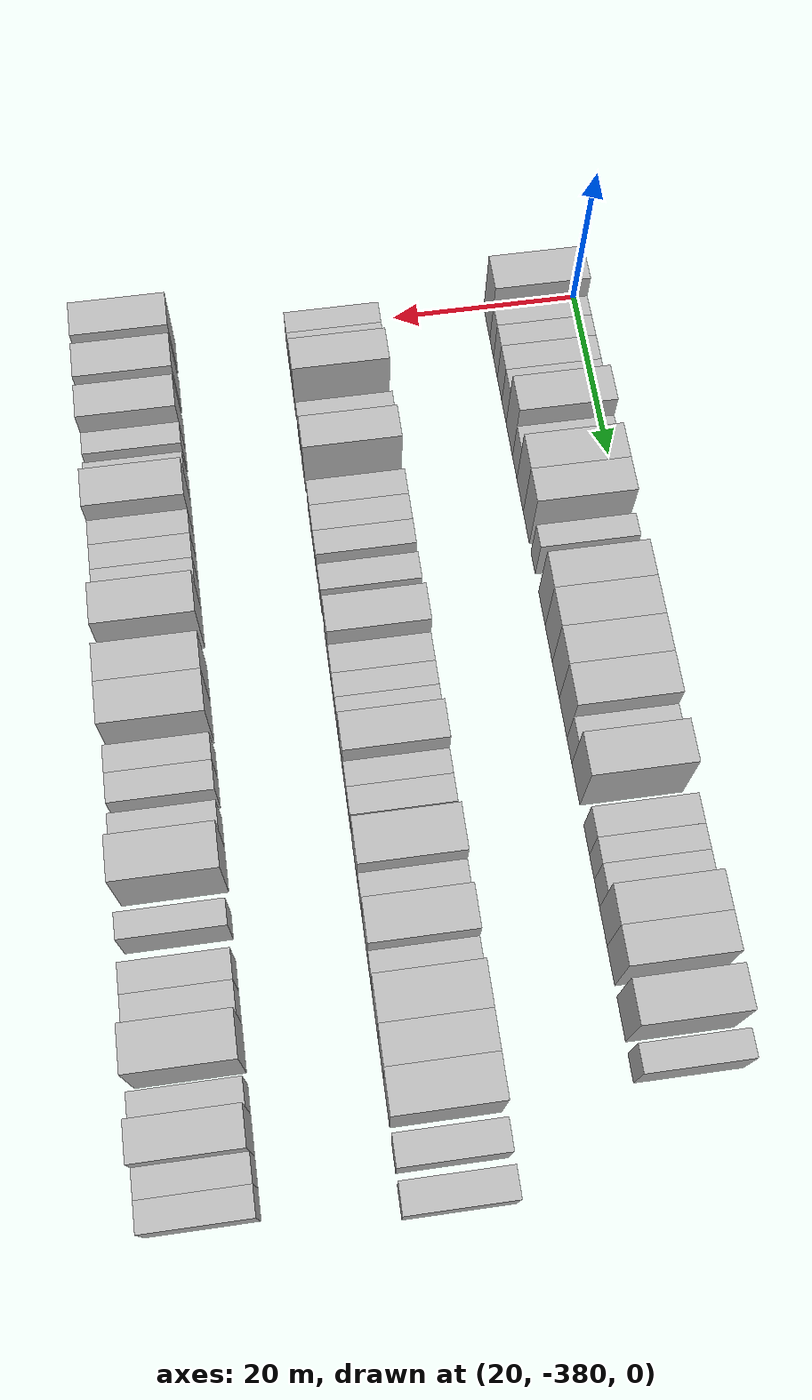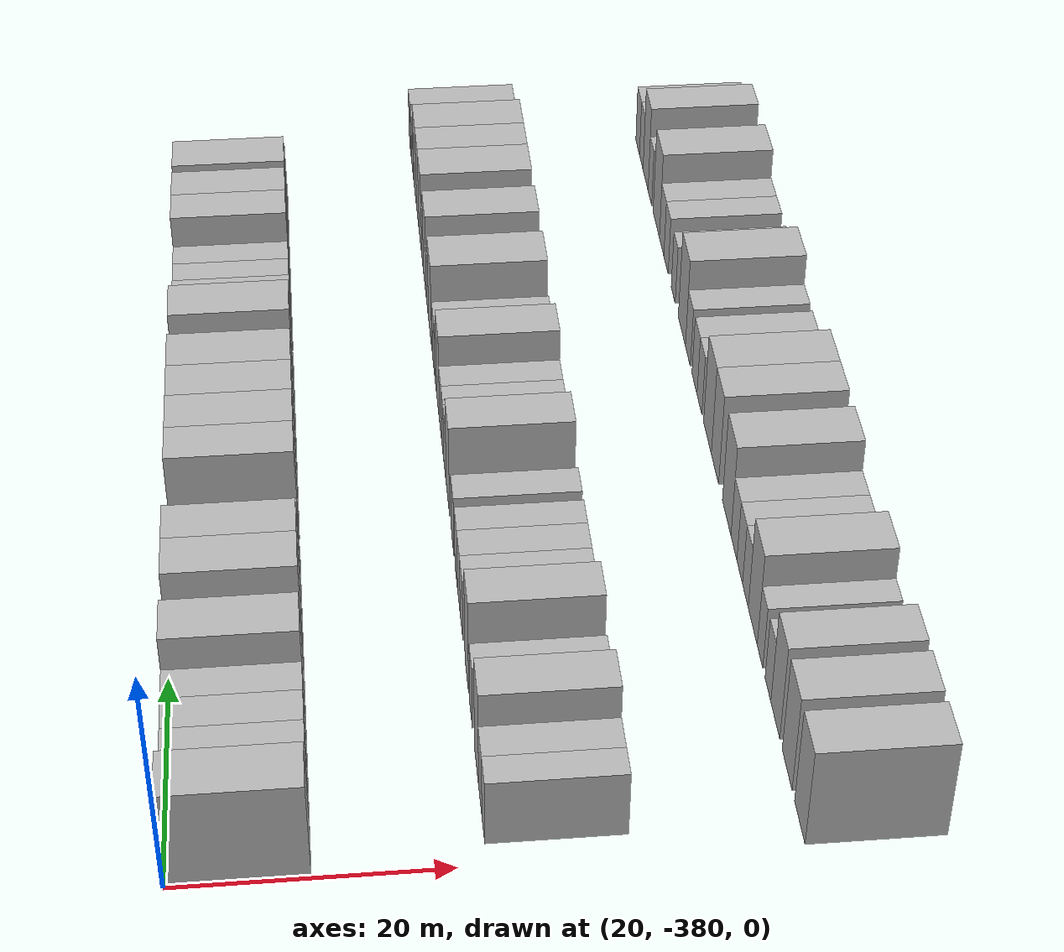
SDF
<sdf version="1.6">
 <world name="default">
  <model name="building_1">
   <static>1</static>
   <pose>25.0000 -377.9261 0 0.000000 0.000000 0.000000</pose>
   <link name="link">
    <pose>0 0 4.50 0 0 0</pose>
    <collision name="collision"><geometry><box><size>10.0000 4.1477 9.0000</size></box></geometry></collision>
    <visual name="visual">
     <cast_shadows>0</cast_shadows>
     <geometry><box><size>10.0000 4.1477 9.0000</size></box></geometry>
     <material>
      <script>
       <uri>model://HANNAS_wall/materials/scripts</uri>
       <uri>model://HANNAS_wall/materials/textures</uri>
       <name>vrc/HANNAS_wall</name>
      </script>
     </material>
    </visual>
   </link>
  </model>
  <model name="building_2">
   <static>1</static>
   <pose>25.0000 -374.6442 0 0.000000 0.000000 0.000000</pose>
   <link name="link">
    <pose>0 0 3.00 0 0 0</pose>
    <collision name="collision"><geometry><box><size>10.0000 2.4162 6.0000</size></box></geometry></collision>
    <visual name="visual">
     <cast_shadows>0</cast_shadows>
     <geometry><box><size>10.0000 2.4162 6.0000</size></box></geometry>
     <material>
      <script>
       <uri>model://HANNAS_wall/materials/scripts</uri>
       <uri>model://HANNAS_wall/materials/textures</uri>
       <name>vrc/HANNAS_wall</name>
      </script>
     </material>
    </visual>
   </link>
  </model>
  <model name="building_3">
   <static>1</static>
   <pose>25.0000 -372.1507 0 0.000000 0.000000 0.000000</pose>
   <link name="link">
    <pose>0 0 3.00 0 0 0</pose>
    <collision name="collision"><geometry><box><size>10.0000 2.5707 6.0000</size></box></geometry></collision>
    <visual name="visual">
     <cast_shadows>0</cast_shadows>
     <geometry><box><size>10.0000 2.5707 6.0000</size></box></geometry>
     <material>
      <script>
       <uri>model://HANNAS_wall/materials/scripts</uri>
       <uri>model://HANNAS_wall/materials/textures</uri>
       <name>vrc/HANNAS_wall</name>
      </script>
     </material>
    </visual>
   </link>
  </model>
  <model name="building_4">
   <static>1</static>
   <pose>25.0000 -369.3969 0 0.000000 0.000000 0.000000</pose>
   <link name="link">
    <pose>0 0 3.00 0 0 0</pose>
    <collision name="collision"><geometry><box><size>10.0000 2.9368 6.0000</size></box></geometry></collision>
    <visual name="visual">
     <cast_shadows>0</cast_shadows>
     <geometry><box><size>10.0000 2.9368 6.0000</size></box></geometry>
     <material>
      <script>
       <uri>model://HANNAS_wall/materials/scripts</uri>
       <uri>model://HANNAS_wall/materials/textures</uri>
       <name>vrc/HANNAS_wall</name>
      </script>
     </material>
    </visual>
   </link>
  </model>
  <model name="building_5">
   <static>1</static>
   <pose>25.0000 -366.5277 0 0.000000 0.000000 0.000000</pose>
   <link name="link">
    <pose>0 0 3.00 0 0 0</pose>
    <collision name="collision"><geometry><box><size>10.0000 2.8017 6.0000</size></box></geometry></collision>
    <visual name="visual">
     <cast_shadows>0</cast_shadows>
     <geometry><box><size>10.0000 2.8017 6.0000</size></box></geometry>
     <material>
      <script>
       <uri>model://HANNAS_wall/materials/scripts</uri>
       <uri>model://HANNAS_wall/materials/textures</uri>
       <name>vrc/HANNAS_wall</name>
      </script>
     </material>
    </visual>
   </link>
  </model>
  <model name="building_6">
   <static>1</static>
   <pose>25.0000 -363.0962 0 0.000000 0.000000 0.000000</pose>
   <link name="link">
    <pose>0 0 4.50 0 0 0</pose>
    <collision name="collision"><geometry><box><size>10.0000 4.0613 9.0000</size></box></geometry></collision>
    <visual name="visual">
     <cast_shadows>0</cast_shadows>
     <geometry><box><size>10.0000 4.0613 9.0000</size></box></geometry>
     <material>
      <script>
       <uri>model://HANNAS_wall/materials/scripts</uri>
       <uri>model://HANNAS_wall/materials/textures</uri>
       <name>vrc/HANNAS_wall</name>
      </script>
     </material>
    </visual>
   </link>
  </model>
  <model name="building_7">
   <static>1</static>
   <pose>25.0000 -359.6851 0 0.000000 0.000000 0.000000</pose>
   <link name="link">
    <pose>0 0 3.00 0 0 0</pose>
    <collision name="collision"><geometry><box><size>10.0000 2.7610 6.0000</size></box></geometry></collision>
    <visual name="visual">
     <cast_shadows>0</cast_shadows>
     <geometry><box><size>10.0000 2.7610 6.0000</size></box></geometry>
     <material>
      <script>
       <uri>model://HANNAS_wall/materials/scripts</uri>
       <uri>model://HANNAS_wall/materials/textures</uri>
       <name>vrc/HANNAS_wall</name>
      </script>
     </material>
    </visual>
   </link>
  </model>
  <model name="building_8">
   <static>1</static>
   <pose>25.0000 -356.3516 0 0.000000 0.000000 0.000000</pose>
   <link name="link">
    <pose>0 0 4.50 0 0 0</pose>
    <collision name="collision"><geometry><box><size>10.0000 3.9060 9.0000</size></box></geometry></collision>
    <visual name="visual">
     <cast_shadows>0</cast_shadows>
     <geometry><box><size>10.0000 3.9060 9.0000</size></box></geometry>
     <material>
      <script>
       <uri>model://HANNAS_wall/materials/scripts</uri>
       <uri>model://HANNAS_wall/materials/textures</uri>
       <name>vrc/HANNAS_wall</name>
      </script>
     </material>
    </visual>
   </link>
  </model>
  <model name="building_9">
   <static>1</static>
   <pose>25.0000 -352.5544 0 0.000000 0.000000 0.000000</pose>
   <link name="link">
    <pose>0 0 4.50 0 0 0</pose>
    <collision name="collision"><geometry><box><size>10.0000 3.6885 9.0000</size></box></geometry></collision>
    <visual name="visual">
     <cast_shadows>0</cast_shadows>
     <geometry><box><size>10.0000 3.6885 9.0000</size></box></geometry>
     <material>
      <script>
       <uri>model://HANNAS_wall/materials/scripts</uri>
       <uri>model://HANNAS_wall/materials/textures</uri>
       <name>vrc/HANNAS_wall</name>
      </script>
     </material>
    </visual>
   </link>
  </model>
  <model name="building_10">
   <static>1</static>
   <pose>25.0000 -348.4630 0 0.000000 0.000000 0.000000</pose>
   <link name="link">
    <pose>0 0 3.00 0 0 0</pose>
    <collision name="collision"><geometry><box><size>10.0000 2.4942 6.0000</size></box></geometry></collision>
    <visual name="visual">
     <cast_shadows>0</cast_shadows>
     <geometry><box><size>10.0000 2.4942 6.0000</size></box></geometry>
     <material>
      <script>
       <uri>model://HANNAS_wall/materials/scripts</uri>
       <uri>model://HANNAS_wall/materials/textures</uri>
       <name>vrc/HANNAS_wall</name>
      </script>
     </material>
    </visual>
   </link>
  </model>
  <model name="building_11">
   <static>1</static>
   <pose>25.0000 -343.3061 0 0.000000 0.000000 0.000000</pose>
   <link name="link">
    <pose>0 0 4.50 0 0 0</pose>
    <collision name="collision"><geometry><box><size>10.0000 3.8197 9.0000</size></box></geometry></collision>
    <visual name="visual">
     <cast_shadows>0</cast_shadows>
     <geometry><box><size>10.0000 3.8197 9.0000</size></box></geometry>
     <material>
      <script>
       <uri>model://HANNAS_wall/materials/scripts</uri>
       <uri>model://HANNAS_wall/materials/textures</uri>
       <name>vrc/HANNAS_wall</name>
      </script>
     </material>
    </visual>
   </link>
  </model>
  <model name="building_12">
   <static>1</static>
   <pose>25.0000 -339.3847 0 0.000000 0.000000 0.000000</pose>
   <link name="link">
    <pose>0 0 4.50 0 0 0</pose>
    <collision name="collision"><geometry><box><size>10.0000 4.0230 9.0000</size></box></geometry></collision>
    <visual name="visual">
     <cast_shadows>0</cast_shadows>
     <geometry><box><size>10.0000 4.0230 9.0000</size></box></geometry>
     <material>
      <script>
       <uri>model://HANNAS_wall/materials/scripts</uri>
       <uri>model://HANNAS_wall/materials/textures</uri>
       <name>vrc/HANNAS_wall</name>
      </script>
     </material>
    </visual>
   </link>
  </model>
  <model name="building_13">
   <static>1</static>
   <pose>25.0000 -335.4382 0 0.000000 0.000000 0.000000</pose>
   <link name="link">
    <pose>0 0 4.50 0 0 0</pose>
    <collision name="collision"><geometry><box><size>10.0000 3.8700 9.0000</size></box></geometry></collision>
    <visual name="visual">
     <cast_shadows>0</cast_shadows>
     <geometry><box><size>10.0000 3.8700 9.0000</size></box></geometry>
     <material>
      <script>
       <uri>model://HANNAS_wall/materials/scripts</uri>
       <uri>model://HANNAS_wall/materials/textures</uri>
       <name>vrc/HANNAS_wall</name>
      </script>
     </material>
    </visual>
   </link>
  </model>
  <model name="building_14">
   <static>1</static>
   <pose>25.0000 -331.4077 0 0.000000 0.000000 0.000000</pose>
   <link name="link">
    <pose>0 0 4.50 0 0 0</pose>
    <collision name="collision"><geometry><box><size>10.0000 4.1910 9.0000</size></box></geometry></collision>
    <visual name="visual">
     <cast_shadows>0</cast_shadows>
     <geometry><box><size>10.0000 4.1910 9.0000</size></box></geometry>
     <material>
      <script>
       <uri>model://HANNAS_wall/materials/scripts</uri>
       <uri>model://HANNAS_wall/materials/textures</uri>
       <name>vrc/HANNAS_wall</name>
      </script>
     </material>
    </visual>
   </link>
  </model>
  <model name="building_15">
   <static>1</static>
   <pose>25.0000 -328.0107 0 0.000000 0.000000 0.000000</pose>
   <link name="link">
    <pose>0 0 3.00 0 0 0</pose>
    <collision name="collision"><geometry><box><size>10.0000 2.6029 6.0000</size></box></geometry></collision>
    <visual name="visual">
     <cast_shadows>0</cast_shadows>
     <geometry><box><size>10.0000 2.6029 6.0000</size></box></geometry>
     <material>
      <script>
       <uri>model://HANNAS_wall/materials/scripts</uri>
       <uri>model://HANNAS_wall/materials/textures</uri>
       <name>vrc/HANNAS_wall</name>
      </script>
     </material>
    </visual>
   </link>
  </model>
  <model name="building_16">
   <static>1</static>
   <pose>25.0000 -324.5977 0 0.000000 0.000000 0.000000</pose>
   <link name="link">
    <pose>0 0 4.50 0 0 0</pose>
    <collision name="collision"><geometry><box><size>10.0000 4.2232 9.0000</size></box></geometry></collision>
    <visual name="visual">
     <cast_shadows>0</cast_shadows>
     <geometry><box><size>10.0000 4.2232 9.0000</size></box></geometry>
     <material>
      <script>
       <uri>model://HANNAS_wall/materials/scripts</uri>
       <uri>model://HANNAS_wall/materials/textures</uri>
       <name>vrc/HANNAS_wall</name>
      </script>
     </material>
    </visual>
   </link>
  </model>
  <model name="building_17">
   <static>1</static>
   <pose>25.0000 -319.0273 0 0.000000 0.000000 0.000000</pose>
   <link name="link">
    <pose>0 0 3.00 0 0 0</pose>
    <collision name="collision"><geometry><box><size>10.0000 2.9176 6.0000</size></box></geometry></collision>
    <visual name="visual">
     <cast_shadows>0</cast_shadows>
     <geometry><box><size>10.0000 2.9176 6.0000</size></box></geometry>
     <material>
      <script>
       <uri>model://HANNAS_wall/materials/scripts</uri>
       <uri>model://HANNAS_wall/materials/textures</uri>
       <name>vrc/HANNAS_wall</name>
      </script>
     </material>
    </visual>
   </link>
  </model>
  <model name="building_18">
   <static>1</static>
   <pose>25.0000 -316.3406 0 0.000000 0.000000 0.000000</pose>
   <link name="link">
    <pose>0 0 3.00 0 0 0</pose>
    <collision name="collision"><geometry><box><size>10.0000 2.4557 6.0000</size></box></geometry></collision>
    <visual name="visual">
     <cast_shadows>0</cast_shadows>
     <geometry><box><size>10.0000 2.4557 6.0000</size></box></geometry>
     <material>
      <script>
       <uri>model://HANNAS_wall/materials/scripts</uri>
       <uri>model://HANNAS_wall/materials/textures</uri>
       <name>vrc/HANNAS_wall</name>
      </script>
     </material>
    </visual>
   </link>
  </model>
  <model name="building_19">
   <static>1</static>
   <pose>25.0000 -313.8000 0 0.000000 0.000000 0.000000</pose>
   <link name="link">
    <pose>0 0 3.00 0 0 0</pose>
    <collision name="collision"><geometry><box><size>10.0000 2.6254 6.0000</size></box></geometry></collision>
    <visual name="visual">
     <cast_shadows>0</cast_shadows>
     <geometry><box><size>10.0000 2.6254 6.0000</size></box></geometry>
     <material>
      <script>
       <uri>model://HANNAS_wall/materials/scripts</uri>
       <uri>model://HANNAS_wall/materials/textures</uri>
       <name>vrc/HANNAS_wall</name>
      </script>
     </material>
    </visual>
   </link>
  </model>
  <model name="building_20">
   <static>1</static>
   <pose>25.0000 -310.6484 0 0.000000 0.000000 0.000000</pose>
   <link name="link">
    <pose>0 0 4.50 0 0 0</pose>
    <collision name="collision"><geometry><box><size>10.0000 3.6779 9.0000</size></box></geometry></collision>
    <visual name="visual">
     <cast_shadows>0</cast_shadows>
     <geometry><box><size>10.0000 3.6779 9.0000</size></box></geometry>
     <material>
      <script>
       <uri>model://HANNAS_wall/materials/scripts</uri>
       <uri>model://HANNAS_wall/materials/textures</uri>
       <name>vrc/HANNAS_wall</name>
      </script>
     </material>
    </visual>
   </link>
  </model>
  <model name="building_21">
   <static>1</static>
   <pose>25.0000 -306.9935 0 0.000000 0.000000 0.000000</pose>
   <link name="link">
    <pose>0 0 4.50 0 0 0</pose>
    <collision name="collision"><geometry><box><size>10.0000 3.6319 9.0000</size></box></geometry></collision>
    <visual name="visual">
     <cast_shadows>0</cast_shadows>
     <geometry><box><size>10.0000 3.6319 9.0000</size></box></geometry>
     <material>
      <script>
       <uri>model://HANNAS_wall/materials/scripts</uri>
       <uri>model://HANNAS_wall/materials/textures</uri>
       <name>vrc/HANNAS_wall</name>
      </script>
     </material>
    </visual>
   </link>
  </model>
  <model name="building_22">
   <static>1</static>
   <pose>25.0000 -302.1401 0 0.000000 0.000000 0.000000</pose>
   <link name="link">
    <pose>0 0 4.50 0 0 0</pose>
    <collision name="collision"><geometry><box><size>10.0000 4.0750 9.0000</size></box></geometry></collision>
    <visual name="visual">
     <cast_shadows>0</cast_shadows>
     <geometry><box><size>10.0000 4.0750 9.0000</size></box></geometry>
     <material>
      <script>
       <uri>model://HANNAS_wall/materials/scripts</uri>
       <uri>model://HANNAS_wall/materials/textures</uri>
       <name>vrc/HANNAS_wall</name>
      </script>
     </material>
    </visual>
   </link>
  </model>
  <model name="building_23">
   <static>1</static>
   <pose>25.0000 -297.7972 0 0.000000 0.000000 0.000000</pose>
   <link name="link">
    <pose>0 0 3.00 0 0 0</pose>
    <collision name="collision"><geometry><box><size>10.0000 2.6108 6.0000</size></box></geometry></collision>
    <visual name="visual">
     <cast_shadows>0</cast_shadows>
     <geometry><box><size>10.0000 2.6108 6.0000</size></box></geometry>
     <material>
      <script>
       <uri>model://HANNAS_wall/materials/scripts</uri>
       <uri>model://HANNAS_wall/materials/textures</uri>
       <name>vrc/HANNAS_wall</name>
      </script>
     </material>
    </visual>
   </link>
  </model>
  <model name="building_194">
   <static>1</static>
   <pose>47.0000 -376.7289 0 0.000000 0.000000 0.000000</pose>
   <link name="link">
    <pose>0 0 3.00 0 0 0</pose>
    <collision name="collision"><geometry><box><size>10.0000 2.5421 6.0000</size></box></geometry></collision>
    <visual name="visual">
     <cast_shadows>0</cast_shadows>
     <geometry><box><size>10.0000 2.5421 6.0000</size></box></geometry>
     <material>
      <script>
       <uri>model://HANNAS_wall/materials/scripts</uri>
       <uri>model://HANNAS_wall/materials/textures</uri>
       <name>vrc/HANNAS_wall</name>
      </script>
     </material>
    </visual>
   </link>
  </model>
  <model name="building_195">
   <static>1</static>
   <pose>47.0000 -374.0402 0 0.000000 0.000000 0.000000</pose>
   <link name="link">
    <pose>0 0 3.00 0 0 0</pose>
    <collision name="collision"><geometry><box><size>10.0000 2.8355 6.0000</size></box></geometry></collision>
    <visual name="visual">
     <cast_shadows>0</cast_shadows>
     <geometry><box><size>10.0000 2.8355 6.0000</size></box></geometry>
     <material>
      <script>
       <uri>model://HANNAS_wall/materials/scripts</uri>
       <uri>model://HANNAS_wall/materials/textures</uri>
       <name>vrc/HANNAS_wall</name>
      </script>
     </material>
    </visual>
   </link>
  </model>
  <model name="building_196">
   <static>1</static>
   <pose>47.0000 -370.7764 0 0.000000 0.000000 0.000000</pose>
   <link name="link">
    <pose>0 0 4.50 0 0 0</pose>
    <collision name="collision"><geometry><box><size>10.0000 3.6920 9.0000</size></box></geometry></collision>
    <visual name="visual">
     <cast_shadows>0</cast_shadows>
     <geometry><box><size>10.0000 3.6920 9.0000</size></box></geometry>
     <material>
      <script>
       <uri>model://HANNAS_wall/materials/scripts</uri>
       <uri>model://HANNAS_wall/materials/textures</uri>
       <name>vrc/HANNAS_wall</name>
      </script>
     </material>
    </visual>
   </link>
  </model>
  <model name="building_197">
   <static>1</static>
   <pose>47.0000 -365.6468 0 0.000000 0.000000 0.000000</pose>
   <link name="link">
    <pose>0 0 3.00 0 0 0</pose>
    <collision name="collision"><geometry><box><size>10.0000 2.5674 6.0000</size></box></geometry></collision>
    <visual name="visual">
     <cast_shadows>0</cast_shadows>
     <geometry><box><size>10.0000 2.5674 6.0000</size></box></geometry>
     <material>
      <script>
       <uri>model://HANNAS_wall/materials/scripts</uri>
       <uri>model://HANNAS_wall/materials/textures</uri>
       <name>vrc/HANNAS_wall</name>
      </script>
     </material>
    </visual>
   </link>
  </model>
  <model name="building_198">
   <static>1</static>
   <pose>47.0000 -361.5516 0 0.000000 0.000000 0.000000</pose>
   <link name="link">
    <pose>0 0 4.50 0 0 0</pose>
    <collision name="collision"><geometry><box><size>10.0000 3.6230 9.0000</size></box></geometry></collision>
    <visual name="visual">
     <cast_shadows>0</cast_shadows>
     <geometry><box><size>10.0000 3.6230 9.0000</size></box></geometry>
     <material>
      <script>
       <uri>model://HANNAS_wall/materials/scripts</uri>
       <uri>model://HANNAS_wall/materials/textures</uri>
       <name>vrc/HANNAS_wall</name>
      </script>
     </material>
    </visual>
   </link>
  </model>
  <model name="building_199">
   <static>1</static>
   <pose>47.0000 -356.3234 0 0.000000 0.000000 0.000000</pose>
   <link name="link">
    <pose>0 0 3.00 0 0 0</pose>
    <collision name="collision"><geometry><box><size>10.0000 2.8335 6.0000</size></box></geometry></collision>
    <visual name="visual">
     <cast_shadows>0</cast_shadows>
     <geometry><box><size>10.0000 2.8335 6.0000</size></box></geometry>
     <material>
      <script>
       <uri>model://HANNAS_wall/materials/scripts</uri>
       <uri>model://HANNAS_wall/materials/textures</uri>
       <name>vrc/HANNAS_wall</name>
      </script>
     </material>
    </visual>
   </link>
  </model>
  <model name="building_200">
   <static>1</static>
   <pose>47.0000 -353.4701 0 0.000000 0.000000 0.000000</pose>
   <link name="link">
    <pose>0 0 3.00 0 0 0</pose>
    <collision name="collision"><geometry><box><size>10.0000 2.8731 6.0000</size></box></geometry></collision>
    <visual name="visual">
     <cast_shadows>0</cast_shadows>
     <geometry><box><size>10.0000 2.8731 6.0000</size></box></geometry>
     <material>
      <script>
       <uri>model://HANNAS_wall/materials/scripts</uri>
       <uri>model://HANNAS_wall/materials/textures</uri>
       <name>vrc/HANNAS_wall</name>
      </script>
     </material>
    </visual>
   </link>
  </model>
  <model name="building_201">
   <static>1</static>
   <pose>47.0000 -350.6966 0 0.000000 0.000000 0.000000</pose>
   <link name="link">
    <pose>0 0 3.00 0 0 0</pose>
    <collision name="collision"><geometry><box><size>10.0000 2.6738 6.0000</size></box></geometry></collision>
    <visual name="visual">
     <cast_shadows>0</cast_shadows>
     <geometry><box><size>10.0000 2.6738 6.0000</size></box></geometry>
     <material>
      <script>
       <uri>model://HANNAS_wall/materials/scripts</uri>
       <uri>model://HANNAS_wall/materials/textures</uri>
       <name>vrc/HANNAS_wall</name>
      </script>
     </material>
    </visual>
   </link>
  </model>
  <model name="building_202">
   <static>1</static>
   <pose>47.0000 -346.9288 0 0.000000 0.000000 0.000000</pose>
   <link name="link">
    <pose>0 0 3.00 0 0 0</pose>
    <collision name="collision"><geometry><box><size>10.0000 2.8618 6.0000</size></box></geometry></collision>
    <visual name="visual">
     <cast_shadows>0</cast_shadows>
     <geometry><box><size>10.0000 2.8618 6.0000</size></box></geometry>
     <material>
      <script>
       <uri>model://HANNAS_wall/materials/scripts</uri>
       <uri>model://HANNAS_wall/materials/textures</uri>
       <name>vrc/HANNAS_wall</name>
      </script>
     </material>
    </visual>
   </link>
  </model>
  <model name="building_203">
   <static>1</static>
   <pose>47.0000 -341.5967 0 0.000000 0.000000 0.000000</pose>
   <link name="link">
    <pose>0 0 4.50 0 0 0</pose>
    <collision name="collision"><geometry><box><size>10.0000 3.8024 9.0000</size></box></geometry></collision>
    <visual name="visual">
     <cast_shadows>0</cast_shadows>
     <geometry><box><size>10.0000 3.8024 9.0000</size></box></geometry>
     <material>
      <script>
       <uri>model://HANNAS_wall/materials/scripts</uri>
       <uri>model://HANNAS_wall/materials/textures</uri>
       <name>vrc/HANNAS_wall</name>
      </script>
     </material>
    </visual>
   </link>
  </model>
  <model name="building_204">
   <static>1</static>
   <pose>47.0000 -338.2165 0 0.000000 0.000000 0.000000</pose>
   <link name="link">
    <pose>0 0 3.00 0 0 0</pose>
    <collision name="collision"><geometry><box><size>10.0000 2.9580 6.0000</size></box></geometry></collision>
    <visual name="visual">
     <cast_shadows>0</cast_shadows>
     <geometry><box><size>10.0000 2.9580 6.0000</size></box></geometry>
     <material>
      <script>
       <uri>model://HANNAS_wall/materials/scripts</uri>
       <uri>model://HANNAS_wall/materials/textures</uri>
       <name>vrc/HANNAS_wall</name>
      </script>
     </material>
    </visual>
   </link>
  </model>
  <model name="building_205">
   <static>1</static>
   <pose>47.0000 -335.5053 0 0.000000 0.000000 0.000000</pose>
   <link name="link">
    <pose>0 0 3.00 0 0 0</pose>
    <collision name="collision"><geometry><box><size>10.0000 2.4645 6.0000</size></box></geometry></collision>
    <visual name="visual">
     <cast_shadows>0</cast_shadows>
     <geometry><box><size>10.0000 2.4645 6.0000</size></box></geometry>
     <material>
      <script>
       <uri>model://HANNAS_wall/materials/scripts</uri>
       <uri>model://HANNAS_wall/materials/textures</uri>
       <name>vrc/HANNAS_wall</name>
      </script>
     </material>
    </visual>
   </link>
  </model>
  <model name="building_206">
   <static>1</static>
   <pose>47.0000 -332.9449 0 0.000000 0.000000 0.000000</pose>
   <link name="link">
    <pose>0 0 3.00 0 0 0</pose>
    <collision name="collision"><geometry><box><size>10.0000 2.6561 6.0000</size></box></geometry></collision>
    <visual name="visual">
     <cast_shadows>0</cast_shadows>
     <geometry><box><size>10.0000 2.6561 6.0000</size></box></geometry>
     <material>
      <script>
       <uri>model://HANNAS_wall/materials/scripts</uri>
       <uri>model://HANNAS_wall/materials/textures</uri>
       <name>vrc/HANNAS_wall</name>
      </script>
     </material>
    </visual>
   </link>
  </model>
  <model name="building_207">
   <static>1</static>
   <pose>47.0000 -329.7353 0 0.000000 0.000000 0.000000</pose>
   <link name="link">
    <pose>0 0 4.50 0 0 0</pose>
    <collision name="collision"><geometry><box><size>10.0000 3.7631 9.0000</size></box></geometry></collision>
    <visual name="visual">
     <cast_shadows>0</cast_shadows>
     <geometry><box><size>10.0000 3.7631 9.0000</size></box></geometry>
     <material>
      <script>
       <uri>model://HANNAS_wall/materials/scripts</uri>
       <uri>model://HANNAS_wall/materials/textures</uri>
       <name>vrc/HANNAS_wall</name>
      </script>
     </material>
    </visual>
   </link>
  </model>
  <model name="building_208">
   <static>1</static>
   <pose>47.0000 -326.6111 0 0.000000 0.000000 0.000000</pose>
   <link name="link">
    <pose>0 0 3.00 0 0 0</pose>
    <collision name="collision"><geometry><box><size>10.0000 2.4852 6.0000</size></box></geometry></collision>
    <visual name="visual">
     <cast_shadows>0</cast_shadows>
     <geometry><box><size>10.0000 2.4852 6.0000</size></box></geometry>
     <material>
      <script>
       <uri>model://HANNAS_wall/materials/scripts</uri>
       <uri>model://HANNAS_wall/materials/textures</uri>
       <name>vrc/HANNAS_wall</name>
      </script>
     </material>
    </visual>
   </link>
  </model>
  <model name="building_209">
   <static>1</static>
   <pose>47.0000 -324.0033 0 0.000000 0.000000 0.000000</pose>
   <link name="link">
    <pose>0 0 3.00 0 0 0</pose>
    <collision name="collision"><geometry><box><size>10.0000 2.7304 6.0000</size></box></geometry></collision>
    <visual name="visual">
     <cast_shadows>0</cast_shadows>
     <geometry><box><size>10.0000 2.7304 6.0000</size></box></geometry>
     <material>
      <script>
       <uri>model://HANNAS_wall/materials/scripts</uri>
       <uri>model://HANNAS_wall/materials/textures</uri>
       <name>vrc/HANNAS_wall</name>
      </script>
     </material>
    </visual>
   </link>
  </model>
  <model name="building_210">
   <static>1</static>
   <pose>47.0000 -319.4121 0 0.000000 0.000000 0.000000</pose>
   <link name="link">
    <pose>0 0 4.50 0 0 0</pose>
    <collision name="collision"><geometry><box><size>10.0000 4.4520 9.0000</size></box></geometry></collision>
    <visual name="visual">
     <cast_shadows>0</cast_shadows>
     <geometry><box><size>10.0000 4.4520 9.0000</size></box></geometry>
     <material>
      <script>
       <uri>model://HANNAS_wall/materials/scripts</uri>
       <uri>model://HANNAS_wall/materials/textures</uri>
       <name>vrc/HANNAS_wall</name>
      </script>
     </material>
    </visual>
   </link>
  </model>
  <model name="building_211">
   <static>1</static>
   <pose>47.0000 -315.7073 0 0.000000 0.000000 0.000000</pose>
   <link name="link">
    <pose>0 0 3.00 0 0 0</pose>
    <collision name="collision"><geometry><box><size>10.0000 2.9576 6.0000</size></box></geometry></collision>
    <visual name="visual">
     <cast_shadows>0</cast_shadows>
     <geometry><box><size>10.0000 2.9576 6.0000</size></box></geometry>
     <material>
      <script>
       <uri>model://HANNAS_wall/materials/scripts</uri>
       <uri>model://HANNAS_wall/materials/textures</uri>
       <name>vrc/HANNAS_wall</name>
      </script>
     </material>
    </visual>
   </link>
  </model>
  <model name="building_212">
   <static>1</static>
   <pose>47.0000 -312.1752 0 0.000000 0.000000 0.000000</pose>
   <link name="link">
    <pose>0 0 4.50 0 0 0</pose>
    <collision name="collision"><geometry><box><size>10.0000 4.1067 9.0000</size></box></geometry></collision>
    <visual name="visual">
     <cast_shadows>0</cast_shadows>
     <geometry><box><size>10.0000 4.1067 9.0000</size></box></geometry>
     <material>
      <script>
       <uri>model://HANNAS_wall/materials/scripts</uri>
       <uri>model://HANNAS_wall/materials/textures</uri>
       <name>vrc/HANNAS_wall</name>
      </script>
     </material>
    </visual>
   </link>
  </model>
  <model name="building_213">
   <static>1</static>
   <pose>47.0000 -308.8231 0 0.000000 0.000000 0.000000</pose>
   <link name="link">
    <pose>0 0 3.00 0 0 0</pose>
    <collision name="collision"><geometry><box><size>10.0000 2.5975 6.0000</size></box></geometry></collision>
    <visual name="visual">
     <cast_shadows>0</cast_shadows>
     <geometry><box><size>10.0000 2.5975 6.0000</size></box></geometry>
     <material>
      <script>
       <uri>model://HANNAS_wall/materials/scripts</uri>
       <uri>model://HANNAS_wall/materials/textures</uri>
       <name>vrc/HANNAS_wall</name>
      </script>
     </material>
    </visual>
   </link>
  </model>
  <model name="building_214">
   <static>1</static>
   <pose>47.0000 -305.4090 0 0.000000 0.000000 0.000000</pose>
   <link name="link">
    <pose>0 0 4.50 0 0 0</pose>
    <collision name="collision"><geometry><box><size>10.0000 4.2308 9.0000</size></box></geometry></collision>
    <visual name="visual">
     <cast_shadows>0</cast_shadows>
     <geometry><box><size>10.0000 4.2308 9.0000</size></box></geometry>
     <material>
      <script>
       <uri>model://HANNAS_wall/materials/scripts</uri>
       <uri>model://HANNAS_wall/materials/textures</uri>
       <name>vrc/HANNAS_wall</name>
      </script>
     </material>
    </visual>
   </link>
  </model>
  <model name="building_215">
   <static>1</static>
   <pose>47.0000 -301.4774 0 0.000000 0.000000 0.000000</pose>
   <link name="link">
    <pose>0 0 4.50 0 0 0</pose>
    <collision name="collision"><geometry><box><size>10.0000 3.6324 9.0000</size></box></geometry></collision>
    <visual name="visual">
     <cast_shadows>0</cast_shadows>
     <geometry><box><size>10.0000 3.6324 9.0000</size></box></geometry>
     <material>
      <script>
       <uri>model://HANNAS_wall/materials/scripts</uri>
       <uri>model://HANNAS_wall/materials/textures</uri>
       <name>vrc/HANNAS_wall</name>
      </script>
     </material>
    </visual>
   </link>
  </model>
  <model name="building_216">
   <static>1</static>
   <pose>47.0000 -297.6321 0 0.000000 0.000000 0.000000</pose>
   <link name="link">
    <pose>0 0 4.50 0 0 0</pose>
    <collision name="collision"><geometry><box><size>10.0000 4.0581 9.0000</size></box></geometry></collision>
    <visual name="visual">
     <cast_shadows>0</cast_shadows>
     <geometry><box><size>10.0000 4.0581 9.0000</size></box></geometry>
     <material>
      <script>
       <uri>model://HANNAS_wall/materials/scripts</uri>
       <uri>model://HANNAS_wall/materials/textures</uri>
       <name>vrc/HANNAS_wall</name>
      </script>
     </material>
    </visual>
   </link>
  </model>
  <model name="building_217">
   <static>1</static>
   <pose>47.0000 -293.1720 0 0.000000 0.000000 0.000000</pose>
   <link name="link">
    <pose>0 0 3.00 0 0 0</pose>
    <collision name="collision"><geometry><box><size>10.0000 2.8620 6.0000</size></box></geometry></collision>
    <visual name="visual">
     <cast_shadows>0</cast_shadows>
     <geometry><box><size>10.0000 2.8620 6.0000</size></box></geometry>
     <material>
      <script>
       <uri>model://HANNAS_wall/materials/scripts</uri>
       <uri>model://HANNAS_wall/materials/textures</uri>
       <name>vrc/HANNAS_wall</name>
      </script>
     </material>
    </visual>
   </link>
  </model>
  <model name="building_218">
   <static>1</static>
   <pose>47.0000 -289.3252 0 0.000000 0.000000 0.000000</pose>
   <link name="link">
    <pose>0 0 3.00 0 0 0</pose>
    <collision name="collision"><geometry><box><size>10.0000 2.8316 6.0000</size></box></geometry></collision>
    <visual name="visual">
     <cast_shadows>0</cast_shadows>
     <geometry><box><size>10.0000 2.8316 6.0000</size></box></geometry>
     <material>
      <script>
       <uri>model://HANNAS_wall/materials/scripts</uri>
       <uri>model://HANNAS_wall/materials/textures</uri>
       <name>vrc/HANNAS_wall</name>
      </script>
     </material>
    </visual>
   </link>
  </model>
  <model name="building_386">
   <static>1</static>
   <pose>69.0000 -377.9886 0 0.000000 0.000000 0.000000</pose>
   <link name="link">
    <pose>0 0 4.50 0 0 0</pose>
    <collision name="collision"><geometry><box><size>10.0000 4.0229 9.0000</size></box></geometry></collision>
    <visual name="visual">
     <cast_shadows>0</cast_shadows>
     <geometry><box><size>10.0000 4.0229 9.0000</size></box></geometry>
     <material>
      <script>
       <uri>model://HANNAS_wall/materials/scripts</uri>
       <uri>model://HANNAS_wall/materials/textures</uri>
       <name>vrc/HANNAS_wall</name>
      </script>
     </material>
    </visual>
   </link>
  </model>
  <model name="building_387">
   <static>1</static>
   <pose>69.0000 -372.9801 0 0.000000 0.000000 0.000000</pose>
   <link name="link">
    <pose>0 0 4.50 0 0 0</pose>
    <collision name="collision"><geometry><box><size>10.0000 3.9941 9.0000</size></box></geometry></collision>
    <visual name="visual">
     <cast_shadows>0</cast_shadows>
     <geometry><box><size>10.0000 3.9941 9.0000</size></box></geometry>
     <material>
      <script>
       <uri>model://HANNAS_wall/materials/scripts</uri>
       <uri>model://HANNAS_wall/materials/textures</uri>
       <name>vrc/HANNAS_wall</name>
      </script>
     </material>
    </visual>
   </link>
  </model>
  <model name="building_388">
   <static>1</static>
   <pose>69.0000 -368.1086 0 0.000000 0.000000 0.000000</pose>
   <link name="link">
    <pose>0 0 4.50 0 0 0</pose>
    <collision name="collision"><geometry><box><size>10.0000 3.7488 9.0000</size></box></geometry></collision>
    <visual name="visual">
     <cast_shadows>0</cast_shadows>
     <geometry><box><size>10.0000 3.7488 9.0000</size></box></geometry>
     <material>
      <script>
       <uri>model://HANNAS_wall/materials/scripts</uri>
       <uri>model://HANNAS_wall/materials/textures</uri>
       <name>vrc/HANNAS_wall</name>
      </script>
     </material>
    </visual>
   </link>
  </model>
  <model name="building_389">
   <static>1</static>
   <pose>69.0000 -364.9738 0 0.000000 0.000000 0.000000</pose>
   <link name="link">
    <pose>0 0 3.00 0 0 0</pose>
    <collision name="collision"><geometry><box><size>10.0000 2.5209 6.0000</size></box></geometry></collision>
    <visual name="visual">
     <cast_shadows>0</cast_shadows>
     <geometry><box><size>10.0000 2.5209 6.0000</size></box></geometry>
     <material>
      <script>
       <uri>model://HANNAS_wall/materials/scripts</uri>
       <uri>model://HANNAS_wall/materials/textures</uri>
       <name>vrc/HANNAS_wall</name>
      </script>
     </material>
    </visual>
   </link>
  </model>
  <model name="building_390">
   <static>1</static>
   <pose>69.0000 -361.4842 0 0.000000 0.000000 0.000000</pose>
   <link name="link">
    <pose>0 0 3.00 0 0 0</pose>
    <collision name="collision"><geometry><box><size>10.0000 2.4583 6.0000</size></box></geometry></collision>
    <visual name="visual">
     <cast_shadows>0</cast_shadows>
     <geometry><box><size>10.0000 2.4583 6.0000</size></box></geometry>
     <material>
      <script>
       <uri>model://HANNAS_wall/materials/scripts</uri>
       <uri>model://HANNAS_wall/materials/textures</uri>
       <name>vrc/HANNAS_wall</name>
      </script>
     </material>
    </visual>
   </link>
  </model>
  <model name="building_391">
   <static>1</static>
   <pose>69.0000 -358.1836 0 0.000000 0.000000 0.000000</pose>
   <link name="link">
    <pose>0 0 4.50 0 0 0</pose>
    <collision name="collision"><geometry><box><size>10.0000 4.1429 9.0000</size></box></geometry></collision>
    <visual name="visual">
     <cast_shadows>0</cast_shadows>
     <geometry><box><size>10.0000 4.1429 9.0000</size></box></geometry>
     <material>
      <script>
       <uri>model://HANNAS_wall/materials/scripts</uri>
       <uri>model://HANNAS_wall/materials/textures</uri>
       <name>vrc/HANNAS_wall</name>
      </script>
     </material>
    </visual>
   </link>
  </model>
  <model name="building_392">
   <static>1</static>
   <pose>69.0000 -354.7683 0 0.000000 0.000000 0.000000</pose>
   <link name="link">
    <pose>0 0 3.00 0 0 0</pose>
    <collision name="collision"><geometry><box><size>10.0000 2.6876 6.0000</size></box></geometry></collision>
    <visual name="visual">
     <cast_shadows>0</cast_shadows>
     <geometry><box><size>10.0000 2.6876 6.0000</size></box></geometry>
     <material>
      <script>
       <uri>model://HANNAS_wall/materials/scripts</uri>
       <uri>model://HANNAS_wall/materials/textures</uri>
       <name>vrc/HANNAS_wall</name>
      </script>
     </material>
    </visual>
   </link>
  </model>
  <model name="building_393">
   <static>1</static>
   <pose>69.0000 -352.0689 0 0.000000 0.000000 0.000000</pose>
   <link name="link">
    <pose>0 0 3.00 0 0 0</pose>
    <collision name="collision"><geometry><box><size>10.0000 2.7111 6.0000</size></box></geometry></collision>
    <visual name="visual">
     <cast_shadows>0</cast_shadows>
     <geometry><box><size>10.0000 2.7111 6.0000</size></box></geometry>
     <material>
      <script>
       <uri>model://HANNAS_wall/materials/scripts</uri>
       <uri>model://HANNAS_wall/materials/textures</uri>
       <name>vrc/HANNAS_wall</name>
      </script>
     </material>
    </visual>
   </link>
  </model>
  <model name="building_394">
   <static>1</static>
   <pose>69.0000 -349.2604 0 0.000000 0.000000 0.000000</pose>
   <link name="link">
    <pose>0 0 3.00 0 0 0</pose>
    <collision name="collision"><geometry><box><size>10.0000 2.9059 6.0000</size></box></geometry></collision>
    <visual name="visual">
     <cast_shadows>0</cast_shadows>
     <geometry><box><size>10.0000 2.9059 6.0000</size></box></geometry>
     <material>
      <script>
       <uri>model://HANNAS_wall/materials/scripts</uri>
       <uri>model://HANNAS_wall/materials/textures</uri>
       <name>vrc/HANNAS_wall</name>
      </script>
     </material>
    </visual>
   </link>
  </model>
  <model name="building_395">
   <static>1</static>
   <pose>69.0000 -345.6490 0 0.000000 0.000000 0.000000</pose>
   <link name="link">
    <pose>0 0 4.50 0 0 0</pose>
    <collision name="collision"><geometry><box><size>10.0000 4.3169 9.0000</size></box></geometry></collision>
    <visual name="visual">
     <cast_shadows>0</cast_shadows>
     <geometry><box><size>10.0000 4.3169 9.0000</size></box></geometry>
     <material>
      <script>
       <uri>model://HANNAS_wall/materials/scripts</uri>
       <uri>model://HANNAS_wall/materials/textures</uri>
       <name>vrc/HANNAS_wall</name>
      </script>
     </material>
    </visual>
   </link>
  </model>
  <model name="building_396">
   <static>1</static>
   <pose>69.0000 -339.5651 0 0.000000 0.000000 0.000000</pose>
   <link name="link">
    <pose>0 0 4.50 0 0 0</pose>
    <collision name="collision"><geometry><box><size>10.0000 3.8509 9.0000</size></box></geometry></collision>
    <visual name="visual">
     <cast_shadows>0</cast_shadows>
     <geometry><box><size>10.0000 3.8509 9.0000</size></box></geometry>
     <material>
      <script>
       <uri>model://HANNAS_wall/materials/scripts</uri>
       <uri>model://HANNAS_wall/materials/textures</uri>
       <name>vrc/HANNAS_wall</name>
      </script>
     </material>
    </visual>
   </link>
  </model>
  <model name="building_397">
   <static>1</static>
   <pose>69.0000 -335.5224 0 0.000000 0.000000 0.000000</pose>
   <link name="link">
    <pose>0 0 4.50 0 0 0</pose>
    <collision name="collision"><geometry><box><size>10.0000 4.2345 9.0000</size></box></geometry></collision>
    <visual name="visual">
     <cast_shadows>0</cast_shadows>
     <geometry><box><size>10.0000 4.2345 9.0000</size></box></geometry>
     <material>
      <script>
       <uri>model://HANNAS_wall/materials/scripts</uri>
       <uri>model://HANNAS_wall/materials/textures</uri>
       <name>vrc/HANNAS_wall</name>
      </script>
     </material>
    </visual>
   </link>
  </model>
  <model name="building_398">
   <static>1</static>
   <pose>69.0000 -331.0430 0 0.000000 0.000000 0.000000</pose>
   <link name="link">
    <pose>0 0 3.00 0 0 0</pose>
    <collision name="collision"><geometry><box><size>10.0000 2.7243 6.0000</size></box></geometry></collision>
    <visual name="visual">
     <cast_shadows>0</cast_shadows>
     <geometry><box><size>10.0000 2.7243 6.0000</size></box></geometry>
     <material>
      <script>
       <uri>model://HANNAS_wall/materials/scripts</uri>
       <uri>model://HANNAS_wall/materials/textures</uri>
       <name>vrc/HANNAS_wall</name>
      </script>
     </material>
    </visual>
   </link>
  </model>
  <model name="building_399">
   <static>1</static>
   <pose>69.0000 -328.2165 0 0.000000 0.000000 0.000000</pose>
   <link name="link">
    <pose>0 0 3.00 0 0 0</pose>
    <collision name="collision"><geometry><box><size>10.0000 2.9286 6.0000</size></box></geometry></collision>
    <visual name="visual">
     <cast_shadows>0</cast_shadows>
     <geometry><box><size>10.0000 2.9286 6.0000</size></box></geometry>
     <material>
      <script>
       <uri>model://HANNAS_wall/materials/scripts</uri>
       <uri>model://HANNAS_wall/materials/textures</uri>
       <name>vrc/HANNAS_wall</name>
      </script>
     </material>
    </visual>
   </link>
  </model>
  <model name="building_400">
   <static>1</static>
   <pose>69.0000 -324.3081 0 0.000000 0.000000 0.000000</pose>
   <link name="link">
    <pose>0 0 3.00 0 0 0</pose>
    <collision name="collision"><geometry><box><size>10.0000 2.8883 6.0000</size></box></geometry></collision>
    <visual name="visual">
     <cast_shadows>0</cast_shadows>
     <geometry><box><size>10.0000 2.8883 6.0000</size></box></geometry>
     <material>
      <script>
       <uri>model://HANNAS_wall/materials/scripts</uri>
       <uri>model://HANNAS_wall/materials/textures</uri>
       <name>vrc/HANNAS_wall</name>
      </script>
     </material>
    </visual>
   </link>
  </model>
  <model name="building_401">
   <static>1</static>
   <pose>69.0000 -320.6996 0 0.000000 0.000000 0.000000</pose>
   <link name="link">
    <pose>0 0 4.50 0 0 0</pose>
    <collision name="collision"><geometry><box><size>10.0000 4.3285 9.0000</size></box></geometry></collision>
    <visual name="visual">
     <cast_shadows>0</cast_shadows>
     <geometry><box><size>10.0000 4.3285 9.0000</size></box></geometry>
     <material>
      <script>
       <uri>model://HANNAS_wall/materials/scripts</uri>
       <uri>model://HANNAS_wall/materials/textures</uri>
       <name>vrc/HANNAS_wall</name>
      </script>
     </material>
    </visual>
   </link>
  </model>
  <model name="building_402">
   <static>1</static>
   <pose>69.0000 -315.2928 0 0.000000 0.000000 0.000000</pose>
   <link name="link">
    <pose>0 0 3.00 0 0 0</pose>
    <collision name="collision"><geometry><box><size>10.0000 2.4852 6.0000</size></box></geometry></collision>
    <visual name="visual">
     <cast_shadows>0</cast_shadows>
     <geometry><box><size>10.0000 2.4852 6.0000</size></box></geometry>
     <material>
      <script>
       <uri>model://HANNAS_wall/materials/scripts</uri>
       <uri>model://HANNAS_wall/materials/textures</uri>
       <name>vrc/HANNAS_wall</name>
      </script>
     </material>
    </visual>
   </link>
  </model>
  <model name="building_403">
   <static>1</static>
   <pose>69.0000 -310.6375 0 0.000000 0.000000 0.000000</pose>
   <link name="link">
    <pose>0 0 3.00 0 0 0</pose>
    <collision name="collision"><geometry><box><size>10.0000 2.8253 6.0000</size></box></geometry></collision>
    <visual name="visual">
     <cast_shadows>0</cast_shadows>
     <geometry><box><size>10.0000 2.8253 6.0000</size></box></geometry>
     <material>
      <script>
       <uri>model://HANNAS_wall/materials/scripts</uri>
       <uri>model://HANNAS_wall/materials/textures</uri>
       <name>vrc/HANNAS_wall</name>
      </script>
     </material>
    </visual>
   </link>
  </model>
  <model name="building_404">
   <static>1</static>
   <pose>69.0000 -307.7418 0 0.000000 0.000000 0.000000</pose>
   <link name="link">
    <pose>0 0 3.00 0 0 0</pose>
    <collision name="collision"><geometry><box><size>10.0000 2.9662 6.0000</size></box></geometry></collision>
    <visual name="visual">
     <cast_shadows>0</cast_shadows>
     <geometry><box><size>10.0000 2.9662 6.0000</size></box></geometry>
     <material>
      <script>
       <uri>model://HANNAS_wall/materials/scripts</uri>
       <uri>model://HANNAS_wall/materials/textures</uri>
       <name>vrc/HANNAS_wall</name>
      </script>
     </material>
    </visual>
   </link>
  </model>
  <model name="building_405">
   <static>1</static>
   <pose>69.0000 -304.1026 0 0.000000 0.000000 0.000000</pose>
   <link name="link">
    <pose>0 0 4.50 0 0 0</pose>
    <collision name="collision"><geometry><box><size>10.0000 4.3120 9.0000</size></box></geometry></collision>
    <visual name="visual">
     <cast_shadows>0</cast_shadows>
     <geometry><box><size>10.0000 4.3120 9.0000</size></box></geometry>
     <material>
      <script>
       <uri>model://HANNAS_wall/materials/scripts</uri>
       <uri>model://HANNAS_wall/materials/textures</uri>
       <name>vrc/HANNAS_wall</name>
      </script>
     </material>
    </visual>
   </link>
  </model>
  <model name="building_406">
   <static>1</static>
   <pose>69.0000 -299.6705 0 0.000000 0.000000 0.000000</pose>
   <link name="link">
    <pose>0 0 3.00 0 0 0</pose>
    <collision name="collision"><geometry><box><size>10.0000 2.5523 6.0000</size></box></geometry></collision>
    <visual name="visual">
     <cast_shadows>0</cast_shadows>
     <geometry><box><size>10.0000 2.5523 6.0000</size></box></geometry>
     <material>
      <script>
       <uri>model://HANNAS_wall/materials/scripts</uri>
       <uri>model://HANNAS_wall/materials/textures</uri>
       <name>vrc/HANNAS_wall</name>
      </script>
     </material>
    </visual>
   </link>
  </model>
  <model name="building_407">
   <static>1</static>
   <pose>69.0000 -296.5777 0 0.000000 0.000000 0.000000</pose>
   <link name="link">
    <pose>0 0 4.50 0 0 0</pose>
    <collision name="collision"><geometry><box><size>10.0000 3.6333 9.0000</size></box></geometry></collision>
    <visual name="visual">
     <cast_shadows>0</cast_shadows>
     <geometry><box><size>10.0000 3.6333 9.0000</size></box></geometry>
     <material>
      <script>
       <uri>model://HANNAS_wall/materials/scripts</uri>
       <uri>model://HANNAS_wall/materials/textures</uri>
       <name>vrc/HANNAS_wall</name>
      </script>
     </material>
    </visual>
   </link>
  </model>
  <model name="building_408">
   <static>1</static>
   <pose>69.0000 -293.4535 0 0.000000 0.000000 0.000000</pose>
   <link name="link">
    <pose>0 0 3.00 0 0 0</pose>
    <collision name="collision"><geometry><box><size>10.0000 2.6149 6.0000</size></box></geometry></collision>
    <visual name="visual">
     <cast_shadows>0</cast_shadows>
     <geometry><box><size>10.0000 2.6149 6.0000</size></box></geometry>
     <material>
      <script>
       <uri>model://HANNAS_wall/materials/scripts</uri>
       <uri>model://HANNAS_wall/materials/textures</uri>
       <name>vrc/HANNAS_wall</name>
      </script>
     </material>
    </visual>
   </link>
  </model>
  <model name="building_409">
   <static>1</static>
   <pose>69.0000 -290.7912 0 0.000000 0.000000 0.000000</pose>
   <link name="link">
    <pose>0 0 3.00 0 0 0</pose>
    <collision name="collision"><geometry><box><size>10.0000 2.7098 6.0000</size></box></geometry></collision>
    <visual name="visual">
     <cast_shadows>0</cast_shadows>
     <geometry><box><size>10.0000 2.7098 6.0000</size></box></geometry>
     <material>
      <script>
       <uri>model://HANNAS_wall/materials/scripts</uri>
       <uri>model://HANNAS_wall/materials/textures</uri>
       <name>vrc/HANNAS_wall</name>
      </script>
     </material>
    </visual>
   </link>
  </model>
 </world>
</sdf>
